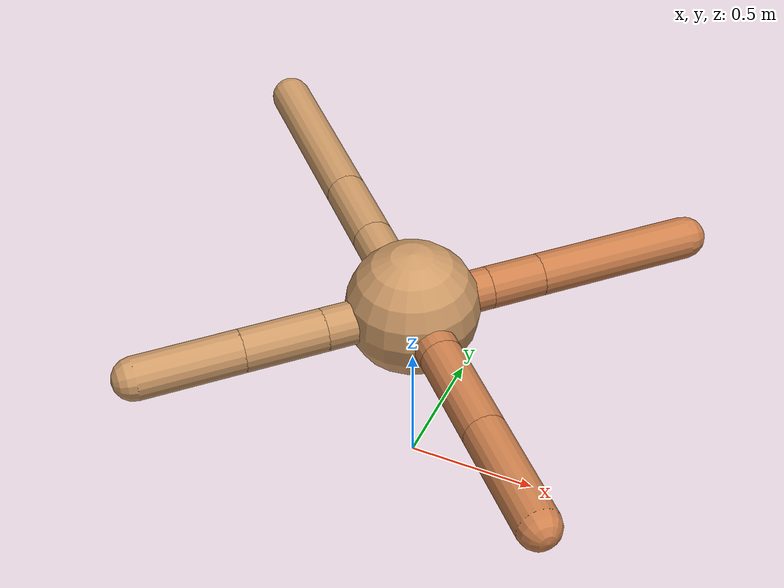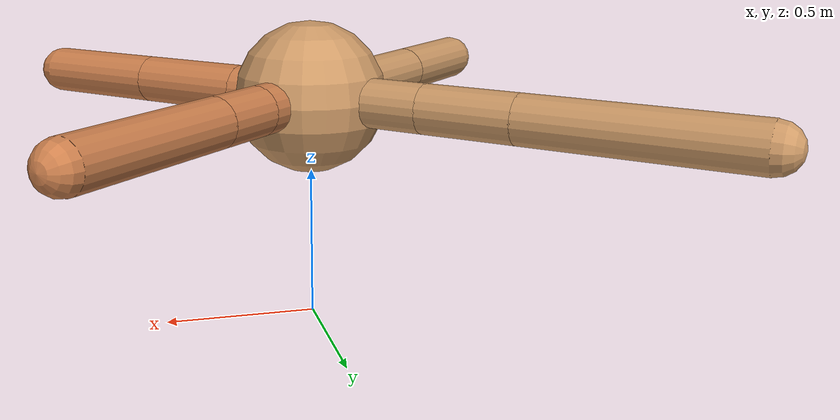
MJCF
<mujoco model="ant">
  <compiler angle="degree" coordinate="local" inertiafromgeom="true" />
  <option integrator="RK4" timestep="0.01" />
  <custom>
    <numeric data="0.0 0.0 0.55 1.0 0.0 0.0 0.0 0.0 1.0 0.0 -1.0 0.0 -1.0 0.0 1.0" name="init_qpos" />
  </custom>
  <default>
    <joint armature="1" damping="1" limited="true" />
    <geom conaffinity="0" condim="3" density="5.0" friction="1.5 0.1 0.1" margin="0.01" rgba="0.8 0.6 0.4 1" />
  </default>
  <worldbody>
    <body name="torso" pos="0 0 0.75">
      <geom name="torso_geom" pos="0 0 0" size="0.25" type="sphere" />

      <body name="front_left_leg" pos="0 0 0">
        <geom fromto="0.0 0.0 0.0 0.21037291603978697 0.21037291603978697 0.0" name="aux_1_geom" size="0.08" type="capsule" rgba=".8 .5 .3 1" />
        <body name="aux_1" pos="0.21037291603978697 0.21037291603978697 0.0">
          <joint axis="0 0 1" name="hip_1" pos="0.0 0.0 0.0" range="-40 40" type="hinge" />
          <geom fromto="0.0 0.0 0.0 0.1454060810335312 0.1454060810335312 0.0" name="left_leg_geom" size="0.08" type="capsule" rgba=".8 .5 .3 1" />
          <body pos="0.1454060810335312 0.1454060810335312 0.0" name="front_left_foot">
            <joint axis="-1 1 0" name="ankle_1" pos="0.0 0.0 0.0" range="30 100" type="hinge" />
            <geom fromto="0.0 0.0 0.0 0.4324480899935679 0.4324480899935679 0.0" name="left_ankle_geom" size="0.08" type="capsule" rgba=".8 .5 .3 1" />
          </body>
        </body>
      </body>
      <body name="front_right_leg" pos="0 0 0">
        <geom fromto="0.0 0.0 0.0 -0.298554483278943 0.298554483278943 0.0" name="aux_2_geom" size="0.08" type="capsule" />
        <body name="aux_2" pos="-0.298554483278943 0.298554483278943 0.0">
          <joint axis="0 0 1" name="hip_2" pos="0.0 0.0 0.0" range="-40 40" type="hinge" />
          <geom fromto="0.0 0.0 0.0 -0.22165461951450516 0.22165461951450516 0.0" name="right_leg_geom" size="0.08" type="capsule" />
          <body pos="-0.22165461951450516 0.22165461951450516 0.0" name="front_right_foot">
            <joint axis="1 1 0" name="ankle_2" pos="0.0 0.0 0.0" range="-100 -30" type="hinge" />
            <geom fromto="0.0 0.0 0.0 -0.5127093573634636 0.5127093573634636 0.0" name="right_ankle_geom" size="0.08" type="capsule" />
          </body>
        </body>
      </body>
      <body name="left_back_leg" pos="0 0 0">
        <geom fromto="0.0 0.0 0.0 -0.24121069090763206 -0.24121069090763206 0.0" name="aux_3_geom" size="0.08" type="capsule" />
        <body name="aux_3" pos="-0.24121069090763206 -0.24121069090763206 0.0">
          <joint axis="0 0 1" name="hip_3" pos="0.0 0.0 0.0" range="-40 40" type="hinge" />
          <geom fromto="0.0 0.0 0.0 -0.2168664549452294 -0.2168664549452294 0.0" name="back_leg_geom" size="0.08" type="capsule" />
          <body pos="-0.2168664549452294 -0.2168664549452294 0.0" name="left_back_foot">
            <joint axis="-1 1 0" name="ankle_3" pos="0.0 0.0 0.0" range="-100 -30" type="hinge" />
            <geom fromto="0.0 0.0 0.0 -0.2748978851576693 -0.2748978851576693 0.0" name="third_ankle_geom" size="0.08" type="capsule" />
          </body>
        </body>
      </body>
      <body name="right_back_leg" pos="0 0 0">
        <geom fromto="0.0 0.0 0.0 0.20281730744797885 -0.20281730744797885 0.0" name="aux_4_geom" size="0.08" type="capsule" rgba=".8 .5 .3 1" />
        <body name="aux_4" pos="0.20281730744797885 -0.20281730744797885 0.0">
          <joint axis="0 0 1" name="hip_4" pos="0.0 0.0 0.0" range="-40 40" type="hinge" />
          <geom fromto="0.0 0.0 0.0 0.27697349467246374 -0.27697349467246374 0.0" name="rightback_leg_geom" size="0.08" type="capsule" rgba=".8 .5 .3 1" />
          <body pos="0.27697349467246374 -0.27697349467246374 0.0" name="right_back_foot">
            <joint axis="1 1 0" name="ankle_4" pos="0.0 0.0 0.0" range="30 100" type="hinge" />
            <geom fromto="0.0 0.0 0.0 0.3095490110843233 -0.3095490110843233 0.0" name="fourth_ankle_geom" size="0.08" type="capsule" rgba=".8 .5 .3 1" />
          </body>
        </body>
      </body>
    </body>
  </worldbody>
  <actuator>
    <motor ctrllimited="true" ctrlrange="-1.0 1.0" joint="hip_4" gear="150" />
    <motor ctrllimited="true" ctrlrange="-1.0 1.0" joint="ankle_4" gear="150" />
    <motor ctrllimited="true" ctrlrange="-1.0 1.0" joint="hip_1" gear="150" />
    <motor ctrllimited="true" ctrlrange="-1.0 1.0" joint="ankle_1" gear="150" />
    <motor ctrllimited="true" ctrlrange="-1.0 1.0" joint="hip_2" gear="150" />
    <motor ctrllimited="true" ctrlrange="-1.0 1.0" joint="ankle_2" gear="150" />
    <motor ctrllimited="true" ctrlrange="-1.0 1.0" joint="hip_3" gear="150" />
    <motor ctrllimited="true" ctrlrange="-1.0 1.0" joint="ankle_3" gear="150" />
  </actuator>
</mujoco>
